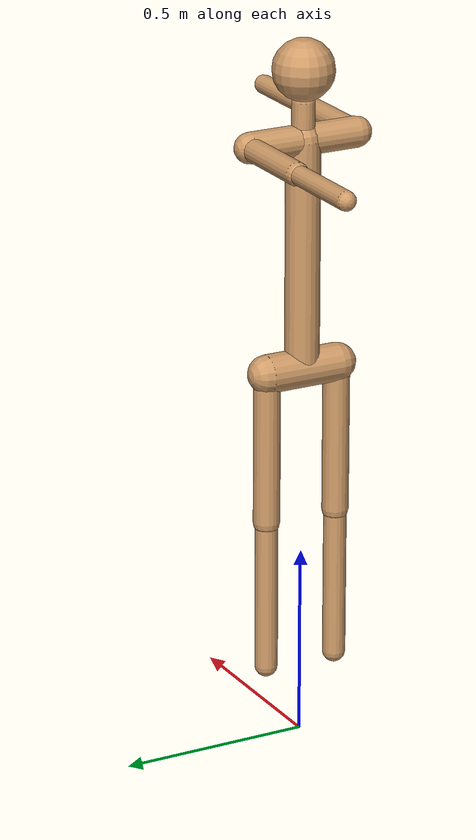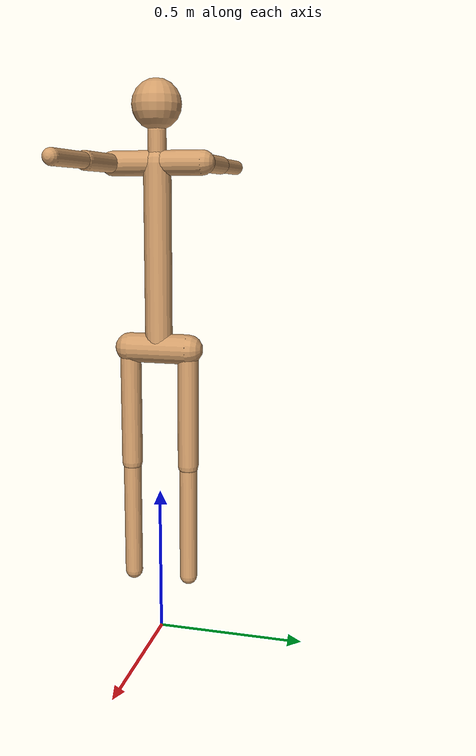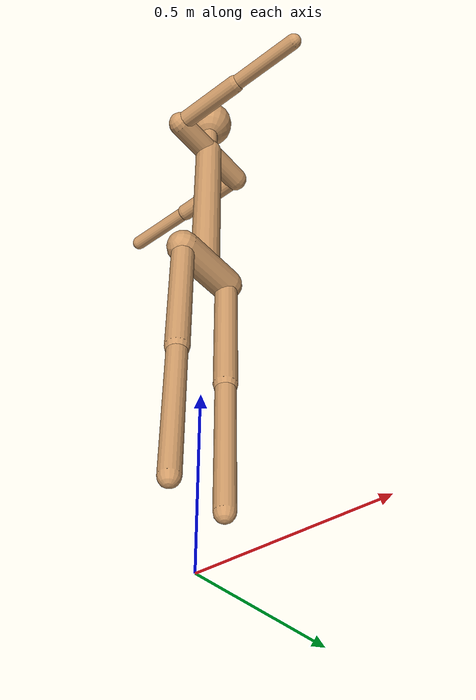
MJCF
<mujoco model="stick_human_structured">
    <compiler angle="degree" coordinate="local" inertiafromgeom="true"/>

    <option integrator="RK4" timestep="0.01" gravity="0 0 -0"/>

    <default>
        <joint armature="0.01" damping="0.1" limited="true"/>
        <geom contype="1" conaffinity="1" condim="3" density="1000" friction=".5 .1 .1" rgba="0.8 0.6 0.4 1"/>
    </default>

    <worldbody>
        <!-- Root: Pelvis -->
        <body name="pelvis" pos="0 0 1.0" euler="0 0 90">
            <freejoint name="root"/>
            <!-- Pelvis Crossbar -->
            <geom name="pelvis_geom" type="capsule" fromto="-0.1 0 0 0.1 0 0" size="0.05"/>

            <body name="torso" pos="0 0 0">
                <!-- Main Spine -->
                <geom name="spine" type="capsule" fromto="0 0 0 0 0 0.6" size="0.045"/>

                <!-- Shoulder Yoke: Connected at the top of the spine (0.6) -->
                <body name="shoulders" pos="0 0 0.6">
                    <geom name="shoulder_bar" type="capsule" fromto="-0.15 0 0 0.15 0 0" size="0.04"/>

                    <!-- Neck: Extending from the center of the shoulder bar -->
                    <body name="neck" pos="0 0 0">
                        <geom name="neck_geom" type="capsule" fromto="0 0 0 0 0 0.1" size="0.03"/>
                        <!-- Head: Attached to the top of the neck -->
                        <body name="head" pos="0 0 0.18">
                            <geom name="head_geom" type="sphere" size="0.08"/>
                        </body>
                    </body>

                    <!-- Right Arm: Attached to the right end of the shoulder bar (-0.15) -->
                    <body name="right_upper_arm" pos="-0.15 0 0">
                        <joint name="right_shoulder" type="ball" range="0 180"/>
                        <geom name="rua_geom" type="capsule" fromto="0 0 0 0 -0.24 0" size="0.03"/>
                        <body name="right_lower_arm" pos="0 -0.24 0">
                            <joint name="right_elbow" type="hinge" pos="0 0 0" axis="0 0 1" range="0 150"/>
                            <geom name="rla_geom" type="capsule" fromto="0 0 0 0 -0.24 0" size="0.025"/>
                        </body>
                    </body>

                    <!-- Left Arm: Attached to the left end of the shoulder bar (0.15) -->
                    <body name="left_upper_arm" pos="0.15 0 0">
                        <joint name="left_shoulder" type="ball" range="0 180"/>
                        <geom name="lua_geom" type="capsule" fromto="0 0 0 0 0.24 0" size="0.03"/>
                        <body name="left_lower_arm" pos="0 0.24 0">
                            <joint name="left_elbow" type="hinge" pos="0 0 0" axis="0 0 1" range="-150 0"/>
                            <geom name="lla_geom" type="capsule" fromto="0 0 0 0 0.24 0" size="0.025"/>
                        </body>
                    </body>
                </body >
            </body>

            <!-- Right Leg -->
            <body name="right_thigh" pos="-0.1 0 0">
                <joint name="right_hip" type="ball" range="0 90"/>
                <geom name="rt_geom" type="capsule" fromto="0 0 0 0 0 -0.4" size="0.035"/>
                <body name="right_shin" pos="0 0 -0.4">
                    <joint name="right_knee" type="hinge" pos="0 0 0" axis="0 1 0" range="0 150"/>
                    <geom name="rs_geom" type="capsule" fromto="0 0 0 0 0 -0.4" size="0.03"/>
                </body>
            </body>

            <!-- Left Leg -->
            <body name="left_thigh" pos="0.1 0 0">
                <joint name="left_hip" type="ball" range="0 90"/>
                <geom name="lt_geom" type="capsule" fromto="0 0 0 0 0 -0.4" size="0.035"/>
                <body name="left_shin" pos="0 0 -0.4">
                    <joint name="left_knee" type="hinge" pos="0 0 0" axis="0 1 0" range="0 150"/>
                    <geom name="ls_geom" type="capsule" fromto="0 0 0 0 0 -0.4" size="0.03"/>
                </body>
            </body>
        </body>
    </worldbody>

    <actuator>
        <motor joint="right_shoulder" ctrlrange="-10.0 10.0"/>
        <motor joint="right_elbow" ctrlrange="-5.00 5.0"/>
        <motor joint="left_shoulder" ctrlrange="-10.0 10.0"/>
        <motor joint="left_elbow" ctrlrange="-5.0 5.0"/>
        <motor joint="right_hip" ctrlrange="-10.0 10.0"/>
        <motor joint="right_knee" ctrlrange="-7.0 7.0"/>
        <motor joint="left_hip" ctrlrange="-10.0 10.0"/>
        <motor joint="left_knee" ctrlrange="-7.0 7.0"/>
    </actuator>
</mujoco>
